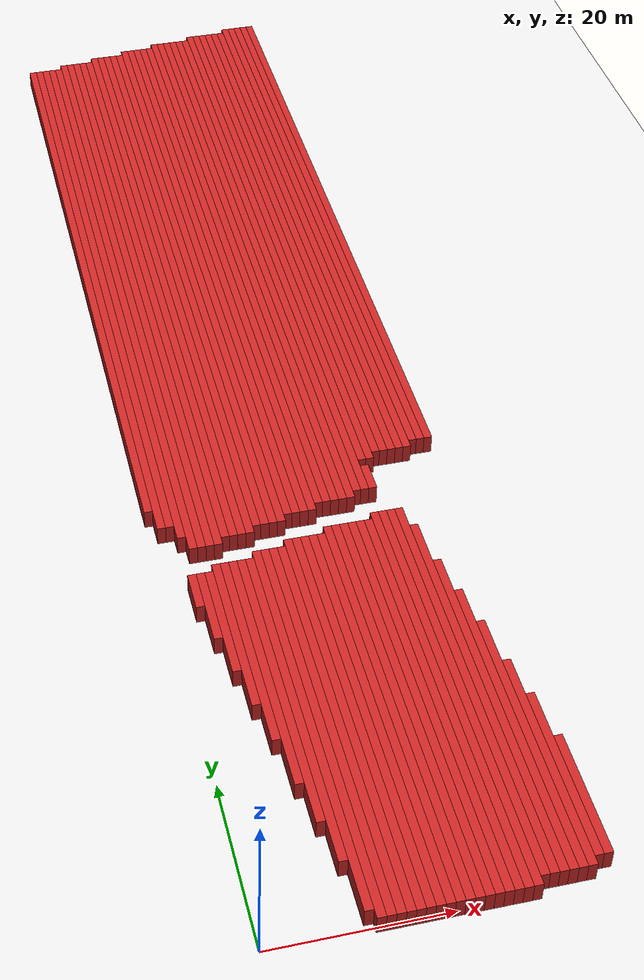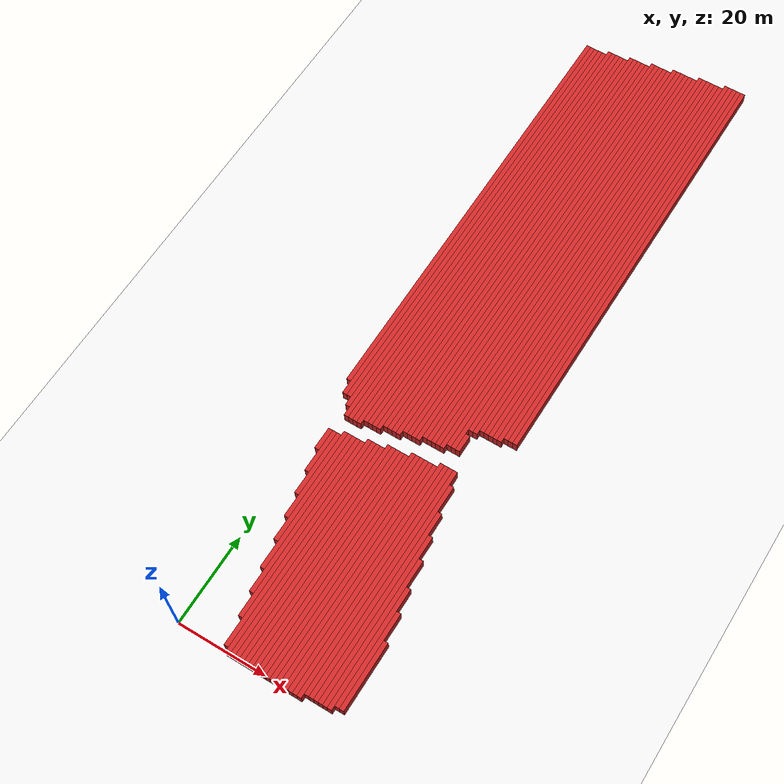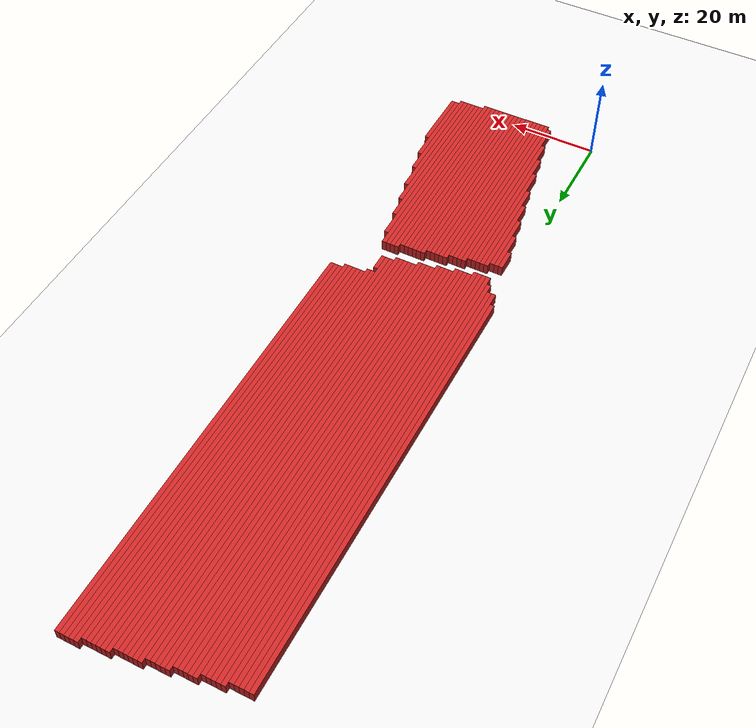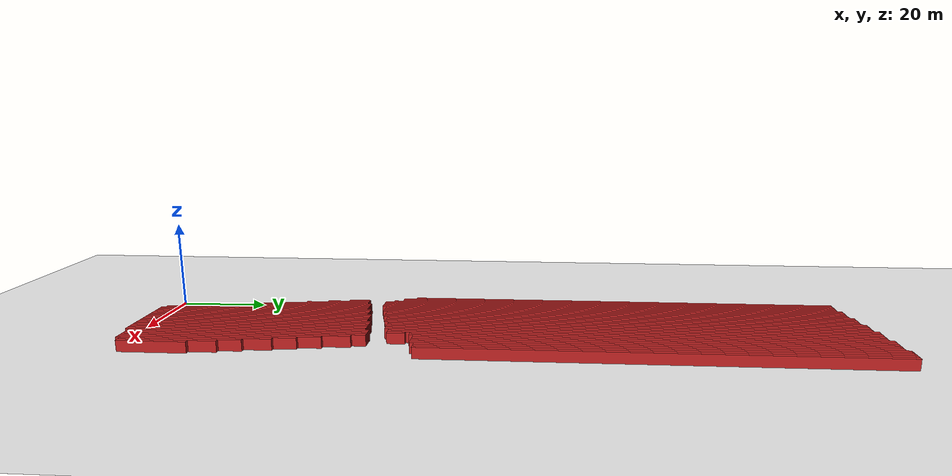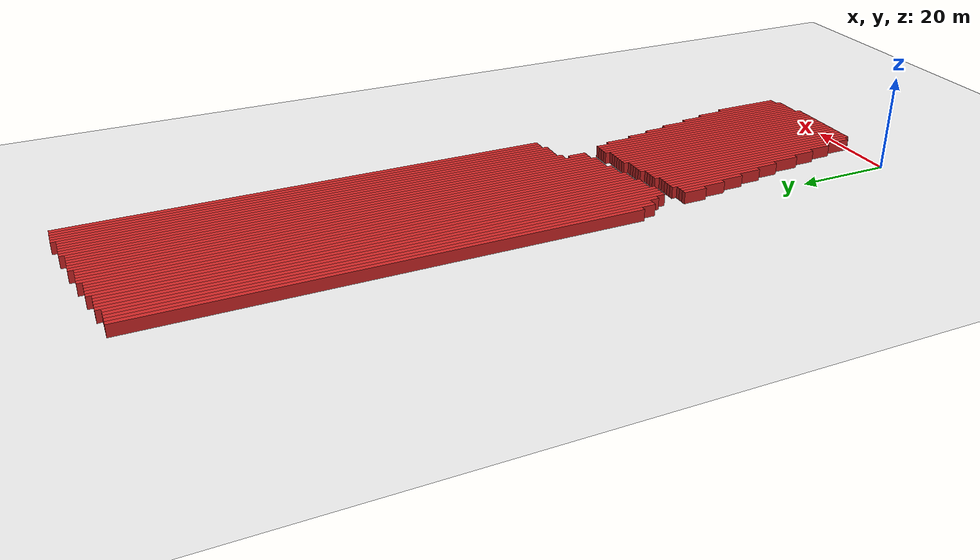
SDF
<sdf version="1.4">
 <world name="1_wall">
  <model name="ground_plane">
   <static>1</static>
   <link name="link">
    <collision name="collision">
     <geometry><plane><normal>0 0 1</normal><size>1000 1000</size></plane></geometry>
     <surface><friction><ode><mu>100</mu><mu2>50</mu2></ode></friction></surface>
    </collision>
    <visual name="visual">
     <cast_shadows>0</cast_shadows>
     <geometry><plane><normal>0 0 1</normal><size>10000 10000</size></plane></geometry>
     <material>
      <script><uri>file://media/materials/scripts/gazebo.material</uri><name>Gazebo/White</name></script>
     </material>
    </visual>
    <velocity_decay><linear>0</linear><angular>0</angular></velocity_decay>
   </link>
  </model>
  <model name="Wall_0">
   <static>1</static>
   <link name="Wall_0">
    <collision name="Wall_Collision_0">
     <geometry><box><size>99.0 1.0 2.5</size></box></geometry>
     <pose>0 0 1.25 0 -0 0</pose>
    </collision>
    <visual name="Wall_Visual_0">
     <pose>0 0 1.25 0 -0 0</pose>
     <geometry><box><size>99.0 1.0 2.5</size></box></geometry>
     <material>
      <script><uri>file://media/materials/scripts/gazebo.material</uri><name>Gazebo/Red</name></script>
     </material>
    </visual>
    <velocity_decay><linear>0</linear><angular>0</angular></velocity_decay>
    <pose>0.0 108.0 0 0 0 1.5707963267948966</pose>
   </link>
  </model>
  <model name="Wall_1">
   <static>1</static>
   <link name="Wall_1">
    <collision name="Wall_Collision_1">
     <geometry><box><size>102.0 1.0 2.5</size></box></geometry>
     <pose>0 0 1.25 0 -0 0</pose>
    </collision>
    <visual name="Wall_Visual_1">
     <pose>0 0 1.25 0 -0 0</pose>
     <geometry><box><size>102.0 1.0 2.5</size></box></geometry>
     <material>
      <script><uri>file://media/materials/scripts/gazebo.material</uri><name>Gazebo/Red</name></script>
     </material>
    </visual>
    <velocity_decay><linear>0</linear><angular>0</angular></velocity_decay>
    <pose>1.0 106.5 0 0 0 1.5707963267948966</pose>
   </link>
  </model>
  <model name="Wall_2">
   <static>1</static>
   <link name="Wall_2">
    <collision name="Wall_Collision_2">
     <geometry><box><size>102.0 1.0 2.5</size></box></geometry>
     <pose>0 0 1.25 0 -0 0</pose>
    </collision>
    <visual name="Wall_Visual_2">
     <pose>0 0 1.25 0 -0 0</pose>
     <geometry><box><size>102.0 1.0 2.5</size></box></geometry>
     <material>
      <script><uri>file://media/materials/scripts/gazebo.material</uri><name>Gazebo/Red</name></script>
     </material>
    </visual>
    <velocity_decay><linear>0</linear><angular>0</angular></velocity_decay>
    <pose>2.0 106.5 0 0 0 1.5707963267948966</pose>
   </link>
  </model>
  <model name="Wall_3">
   <static>1</static>
   <link name="Wall_3">
    <collision name="Wall_Collision_3">
     <geometry><box><size>5.0 1.0 2.5</size></box></geometry>
     <pose>0 0 1.25 0 -0 0</pose>
    </collision>
    <visual name="Wall_Visual_3">
     <pose>0 0 1.25 0 -0 0</pose>
     <geometry><box><size>5.0 1.0 2.5</size></box></geometry>
     <material>
      <script><uri>file://media/materials/scripts/gazebo.material</uri><name>Gazebo/Red</name></script>
     </material>
    </visual>
    <velocity_decay><linear>0</linear><angular>0</angular></velocity_decay>
    <pose>3.0 45.0 0 0 0 1.5707963267948966</pose>
   </link>
  </model>
  <model name="Wall_4">
   <static>1</static>
   <link name="Wall_4">
    <collision name="Wall_Collision_4">
     <geometry><box><size>104.0 1.0 2.5</size></box></geometry>
     <pose>0 0 1.25 0 -0 0</pose>
    </collision>
    <visual name="Wall_Visual_4">
     <pose>0 0 1.25 0 -0 0</pose>
     <geometry><box><size>104.0 1.0 2.5</size></box></geometry>
     <material>
      <script><uri>file://media/materials/scripts/gazebo.material</uri><name>Gazebo/Red</name></script>
     </material>
    </visual>
    <velocity_decay><linear>0</linear><angular>0</angular></velocity_decay>
    <pose>3.0 105.5 0 0 0 1.5707963267948966</pose>
   </link>
  </model>
  <model name="Wall_5">
   <static>1</static>
   <link name="Wall_5">
    <collision name="Wall_Collision_5">
     <geometry><box><size>10.0 1.0 2.5</size></box></geometry>
     <pose>0 0 1.25 0 -0 0</pose>
    </collision>
    <visual name="Wall_Visual_5">
     <pose>0 0 1.25 0 -0 0</pose>
     <geometry><box><size>10.0 1.0 2.5</size></box></geometry>
     <material>
      <script><uri>file://media/materials/scripts/gazebo.material</uri><name>Gazebo/Red</name></script>
     </material>
    </visual>
    <velocity_decay><linear>0</linear><angular>0</angular></velocity_decay>
    <pose>4.0 42.5 0 0 0 1.5707963267948966</pose>
   </link>
  </model>
  <model name="Wall_6">
   <static>1</static>
   <link name="Wall_6">
    <collision name="Wall_Collision_6">
     <geometry><box><size>106.0 1.0 2.5</size></box></geometry>
     <pose>0 0 1.25 0 -0 0</pose>
    </collision>
    <visual name="Wall_Visual_6">
     <pose>0 0 1.25 0 -0 0</pose>
     <geometry><box><size>106.0 1.0 2.5</size></box></geometry>
     <material>
      <script><uri>file://media/materials/scripts/gazebo.material</uri><name>Gazebo/Red</name></script>
     </material>
    </visual>
    <velocity_decay><linear>0</linear><angular>0</angular></velocity_decay>
    <pose>4.0 104.5 0 0 0 1.5707963267948966</pose>
   </link>
  </model>
  <model name="Wall_7">
   <static>1</static>
   <link name="Wall_7">
    <collision name="Wall_Collision_7">
     <geometry><box><size>15.0 1.0 2.5</size></box></geometry>
     <pose>0 0 1.25 0 -0 0</pose>
    </collision>
    <visual name="Wall_Visual_7">
     <pose>0 0 1.25 0 -0 0</pose>
     <geometry><box><size>15.0 1.0 2.5</size></box></geometry>
     <material>
      <script><uri>file://media/materials/scripts/gazebo.material</uri><name>Gazebo/Red</name></script>
     </material>
    </visual>
    <velocity_decay><linear>0</linear><angular>0</angular></velocity_decay>
    <pose>5.0 40.0 0 0 0 1.5707963267948966</pose>
   </link>
  </model>
  <model name="Wall_8">
   <static>1</static>
   <link name="Wall_8">
    <collision name="Wall_Collision_8">
     <geometry><box><size>107.0 1.0 2.5</size></box></geometry>
     <pose>0 0 1.25 0 -0 0</pose>
    </collision>
    <visual name="Wall_Visual_8">
     <pose>0 0 1.25 0 -0 0</pose>
     <geometry><box><size>107.0 1.0 2.5</size></box></geometry>
     <material>
      <script><uri>file://media/materials/scripts/gazebo.material</uri><name>Gazebo/Red</name></script>
     </material>
    </visual>
    <velocity_decay><linear>0</linear><angular>0</angular></velocity_decay>
    <pose>5.0 105.0 0 0 0 1.5707963267948966</pose>
   </link>
  </model>
  <model name="Wall_9">
   <static>1</static>
   <link name="Wall_9">
    <collision name="Wall_Collision_9">
     <geometry><box><size>21.0 1.0 2.5</size></box></geometry>
     <pose>0 0 1.25 0 -0 0</pose>
    </collision>
    <visual name="Wall_Visual_9">
     <pose>0 0 1.25 0 -0 0</pose>
     <geometry><box><size>21.0 1.0 2.5</size></box></geometry>
     <material>
      <script><uri>file://media/materials/scripts/gazebo.material</uri><name>Gazebo/Red</name></script>
     </material>
    </visual>
    <velocity_decay><linear>0</linear><angular>0</angular></velocity_decay>
    <pose>6.0 38.0 0 0 0 1.5707963267948966</pose>
   </link>
  </model>
  <model name="Wall_10">
   <static>1</static>
   <link name="Wall_10">
    <collision name="Wall_Collision_10">
     <geometry><box><size>107.0 1.0 2.5</size></box></geometry>
     <pose>0 0 1.25 0 -0 0</pose>
    </collision>
    <visual name="Wall_Visual_10">
     <pose>0 0 1.25 0 -0 0</pose>
     <geometry><box><size>107.0 1.0 2.5</size></box></geometry>
     <material>
      <script><uri>file://media/materials/scripts/gazebo.material</uri><name>Gazebo/Red</name></script>
     </material>
    </visual>
    <velocity_decay><linear>0</linear><angular>0</angular></velocity_decay>
    <pose>6.0 105.0 0 0 0 1.5707963267948966</pose>
   </link>
  </model>
  <model name="Wall_11">
   <static>1</static>
   <link name="Wall_11">
    <collision name="Wall_Collision_11">
     <geometry><box><size>26.0 1.0 2.5</size></box></geometry>
     <pose>0 0 1.25 0 -0 0</pose>
    </collision>
    <visual name="Wall_Visual_11">
     <pose>0 0 1.25 0 -0 0</pose>
     <geometry><box><size>26.0 1.0 2.5</size></box></geometry>
     <material>
      <script><uri>file://media/materials/scripts/gazebo.material</uri><name>Gazebo/Red</name></script>
     </material>
    </visual>
    <velocity_decay><linear>0</linear><angular>0</angular></velocity_decay>
    <pose>7.0 35.5 0 0 0 1.5707963267948966</pose>
   </link>
  </model>
  <model name="Wall_12">
   <static>1</static>
   <link name="Wall_12">
    <collision name="Wall_Collision_12">
     <geometry><box><size>107.0 1.0 2.5</size></box></geometry>
     <pose>0 0 1.25 0 -0 0</pose>
    </collision>
    <visual name="Wall_Visual_12">
     <pose>0 0 1.25 0 -0 0</pose>
     <geometry><box><size>107.0 1.0 2.5</size></box></geometry>
     <material>
      <script><uri>file://media/materials/scripts/gazebo.material</uri><name>Gazebo/Red</name></script>
     </material>
    </visual>
    <velocity_decay><linear>0</linear><angular>0</angular></velocity_decay>
    <pose>7.0 105.0 0 0 0 1.5707963267948966</pose>
   </link>
  </model>
  <model name="Wall_13">
   <static>1</static>
   <link name="Wall_13">
    <collision name="Wall_Collision_13">
     <geometry><box><size>32.0 1.0 2.5</size></box></geometry>
     <pose>0 0 1.25 0 -0 0</pose>
    </collision>
    <visual name="Wall_Visual_13">
     <pose>0 0 1.25 0 -0 0</pose>
     <geometry><box><size>32.0 1.0 2.5</size></box></geometry>
     <material>
      <script><uri>file://media/materials/scripts/gazebo.material</uri><name>Gazebo/Red</name></script>
     </material>
    </visual>
    <velocity_decay><linear>0</linear><angular>0</angular></velocity_decay>
    <pose>8.0 32.5 0 0 0 1.5707963267948966</pose>
   </link>
  </model>
  <model name="Wall_14">
   <static>1</static>
   <link name="Wall_14">
    <collision name="Wall_Collision_14">
     <geometry><box><size>106.0 1.0 2.5</size></box></geometry>
     <pose>0 0 1.25 0 -0 0</pose>
    </collision>
    <visual name="Wall_Visual_14">
     <pose>0 0 1.25 0 -0 0</pose>
     <geometry><box><size>106.0 1.0 2.5</size></box></geometry>
     <material>
      <script><uri>file://media/materials/scripts/gazebo.material</uri><name>Gazebo/Red</name></script>
     </material>
    </visual>
    <velocity_decay><linear>0</linear><angular>0</angular></velocity_decay>
    <pose>8.0 105.5 0 0 0 1.5707963267948966</pose>
   </link>
  </model>
  <model name="Wall_15">
   <static>1</static>
   <link name="Wall_15">
    <collision name="Wall_Collision_15">
     <geometry><box><size>37.0 1.0 2.5</size></box></geometry>
     <pose>0 0 1.25 0 -0 0</pose>
    </collision>
    <visual name="Wall_Visual_15">
     <pose>0 0 1.25 0 -0 0</pose>
     <geometry><box><size>37.0 1.0 2.5</size></box></geometry>
     <material>
      <script><uri>file://media/materials/scripts/gazebo.material</uri><name>Gazebo/Red</name></script>
     </material>
    </visual>
    <velocity_decay><linear>0</linear><angular>0</angular></velocity_decay>
    <pose>9.0 30.0 0 0 0 1.5707963267948966</pose>
   </link>
  </model>
  <model name="Wall_16">
   <static>1</static>
   <link name="Wall_16">
    <collision name="Wall_Collision_16">
     <geometry><box><size>106.0 1.0 2.5</size></box></geometry>
     <pose>0 0 1.25 0 -0 0</pose>
    </collision>
    <visual name="Wall_Visual_16">
     <pose>0 0 1.25 0 -0 0</pose>
     <geometry><box><size>106.0 1.0 2.5</size></box></geometry>
     <material>
      <script><uri>file://media/materials/scripts/gazebo.material</uri><name>Gazebo/Red</name></script>
     </material>
    </visual>
    <velocity_decay><linear>0</linear><angular>0</angular></velocity_decay>
    <pose>9.0 105.5 0 0 0 1.5707963267948966</pose>
   </link>
  </model>
  <model name="Wall_17">
   <static>1</static>
   <link name="Wall_17">
    <collision name="Wall_Collision_17">
     <geometry><box><size>42.0 1.0 2.5</size></box></geometry>
     <pose>0 0 1.25 0 -0 0</pose>
    </collision>
    <visual name="Wall_Visual_17">
     <pose>0 0 1.25 0 -0 0</pose>
     <geometry><box><size>42.0 1.0 2.5</size></box></geometry>
     <material>
      <script><uri>file://media/materials/scripts/gazebo.material</uri><name>Gazebo/Red</name></script>
     </material>
    </visual>
    <velocity_decay><linear>0</linear><angular>0</angular></velocity_decay>
    <pose>10.0 27.5 0 0 0 1.5707963267948966</pose>
   </link>
  </model>
  <model name="Wall_18">
   <static>1</static>
   <link name="Wall_18">
    <collision name="Wall_Collision_18">
     <geometry><box><size>107.0 1.0 2.5</size></box></geometry>
     <pose>0 0 1.25 0 -0 0</pose>
    </collision>
    <visual name="Wall_Visual_18">
     <pose>0 0 1.25 0 -0 0</pose>
     <geometry><box><size>107.0 1.0 2.5</size></box></geometry>
     <material>
      <script><uri>file://media/materials/scripts/gazebo.material</uri><name>Gazebo/Red</name></script>
     </material>
    </visual>
    <velocity_decay><linear>0</linear><angular>0</angular></velocity_decay>
    <pose>10.0 106.0 0 0 0 1.5707963267948966</pose>
   </link>
  </model>
  <model name="Wall_19">
   <static>1</static>
   <link name="Wall_19">
    <collision name="Wall_Collision_19">
     <geometry><box><size>49.0 1.0 2.5</size></box></geometry>
     <pose>0 0 1.25 0 -0 0</pose>
    </collision>
    <visual name="Wall_Visual_19">
     <pose>0 0 1.25 0 -0 0</pose>
     <geometry><box><size>49.0 1.0 2.5</size></box></geometry>
     <material>
      <script><uri>file://media/materials/scripts/gazebo.material</uri><name>Gazebo/Red</name></script>
     </material>
    </visual>
    <velocity_decay><linear>0</linear><angular>0</angular></velocity_decay>
    <pose>11.0 25.0 0 0 0 1.5707963267948966</pose>
   </link>
  </model>
  <model name="Wall_20">
   <static>1</static>
   <link name="Wall_20">
    <collision name="Wall_Collision_20">
     <geometry><box><size>107.0 1.0 2.5</size></box></geometry>
     <pose>0 0 1.25 0 -0 0</pose>
    </collision>
    <visual name="Wall_Visual_20">
     <pose>0 0 1.25 0 -0 0</pose>
     <geometry><box><size>107.0 1.0 2.5</size></box></geometry>
     <material>
      <script><uri>file://media/materials/scripts/gazebo.material</uri><name>Gazebo/Red</name></script>
     </material>
    </visual>
    <velocity_decay><linear>0</linear><angular>0</angular></velocity_decay>
    <pose>11.0 106.0 0 0 0 1.5707963267948966</pose>
   </link>
  </model>
  <model name="Wall_21">
   <static>1</static>
   <link name="Wall_21">
    <collision name="Wall_Collision_21">
     <geometry><box><size>50.0 1.0 2.5</size></box></geometry>
     <pose>0 0 1.25 0 -0 0</pose>
    </collision>
    <visual name="Wall_Visual_21">
     <pose>0 0 1.25 0 -0 0</pose>
     <geometry><box><size>50.0 1.0 2.5</size></box></geometry>
     <material>
      <script><uri>file://media/materials/scripts/gazebo.material</uri><name>Gazebo/Red</name></script>
     </material>
    </visual>
    <velocity_decay><linear>0</linear><angular>0</angular></velocity_decay>
    <pose>12.0 24.5 0 0 0 1.5707963267948966</pose>
   </link>
  </model>
  <model name="Wall_22">
   <static>1</static>
   <link name="Wall_22">
    <collision name="Wall_Collision_22">
     <geometry><box><size>106.0 1.0 2.5</size></box></geometry>
     <pose>0 0 1.25 0 -0 0</pose>
    </collision>
    <visual name="Wall_Visual_22">
     <pose>0 0 1.25 0 -0 0</pose>
     <geometry><box><size>106.0 1.0 2.5</size></box></geometry>
     <material>
      <script><uri>file://media/materials/scripts/gazebo.material</uri><name>Gazebo/Red</name></script>
     </material>
    </visual>
    <velocity_decay><linear>0</linear><angular>0</angular></velocity_decay>
    <pose>12.0 106.5 0 0 0 1.5707963267948966</pose>
   </link>
  </model>
  <model name="Wall_23">
   <static>1</static>
   <link name="Wall_23">
    <collision name="Wall_Collision_23">
     <geometry><box><size>50.0 1.0 2.5</size></box></geometry>
     <pose>0 0 1.25 0 -0 0</pose>
    </collision>
    <visual name="Wall_Visual_23">
     <pose>0 0 1.25 0 -0 0</pose>
     <geometry><box><size>50.0 1.0 2.5</size></box></geometry>
     <material>
      <script><uri>file://media/materials/scripts/gazebo.material</uri><name>Gazebo/Red</name></script>
     </material>
    </visual>
    <velocity_decay><linear>0</linear><angular>0</angular></velocity_decay>
    <pose>13.0 24.5 0 0 0 1.5707963267948966</pose>
   </link>
  </model>
  <model name="Wall_24">
   <static>1</static>
   <link name="Wall_24">
    <collision name="Wall_Collision_24">
     <geometry><box><size>106.0 1.0 2.5</size></box></geometry>
     <pose>0 0 1.25 0 -0 0</pose>
    </collision>
    <visual name="Wall_Visual_24">
     <pose>0 0 1.25 0 -0 0</pose>
     <geometry><box><size>106.0 1.0 2.5</size></box></geometry>
     <material>
      <script><uri>file://media/materials/scripts/gazebo.material</uri><name>Gazebo/Red</name></script>
     </material>
    </visual>
    <velocity_decay><linear>0</linear><angular>0</angular></velocity_decay>
    <pose>13.0 106.5 0 0 0 1.5707963267948966</pose>
   </link>
  </model>
  <model name="Wall_25">
   <static>1</static>
   <link name="Wall_25">
    <collision name="Wall_Collision_25">
     <geometry><box><size>50.0 1.0 2.5</size></box></geometry>
     <pose>0 0 1.25 0 -0 0</pose>
    </collision>
    <visual name="Wall_Visual_25">
     <pose>0 0 1.25 0 -0 0</pose>
     <geometry><box><size>50.0 1.0 2.5</size></box></geometry>
     <material>
      <script><uri>file://media/materials/scripts/gazebo.material</uri><name>Gazebo/Red</name></script>
     </material>
    </visual>
    <velocity_decay><linear>0</linear><angular>0</angular></velocity_decay>
    <pose>14.0 24.5 0 0 0 1.5707963267948966</pose>
   </link>
  </model>
  <model name="Wall_26">
   <static>1</static>
   <link name="Wall_26">
    <collision name="Wall_Collision_26">
     <geometry><box><size>106.0 1.0 2.5</size></box></geometry>
     <pose>0 0 1.25 0 -0 0</pose>
    </collision>
    <visual name="Wall_Visual_26">
     <pose>0 0 1.25 0 -0 0</pose>
     <geometry><box><size>106.0 1.0 2.5</size></box></geometry>
     <material>
      <script><uri>file://media/materials/scripts/gazebo.material</uri><name>Gazebo/Red</name></script>
     </material>
    </visual>
    <velocity_decay><linear>0</linear><angular>0</angular></velocity_decay>
    <pose>14.0 106.5 0 0 0 1.5707963267948966</pose>
   </link>
  </model>
  <model name="Wall_27">
   <static>1</static>
   <link name="Wall_27">
    <collision name="Wall_Collision_27">
     <geometry><box><size>51.0 1.0 2.5</size></box></geometry>
     <pose>0 0 1.25 0 -0 0</pose>
    </collision>
    <visual name="Wall_Visual_27">
     <pose>0 0 1.25 0 -0 0</pose>
     <geometry><box><size>51.0 1.0 2.5</size></box></geometry>
     <material>
      <script><uri>file://media/materials/scripts/gazebo.material</uri><name>Gazebo/Red</name></script>
     </material>
    </visual>
    <velocity_decay><linear>0</linear><angular>0</angular></velocity_decay>
    <pose>15.0 25.0 0 0 0 1.5707963267948966</pose>
   </link>
  </model>
  <model name="Wall_28">
   <static>1</static>
   <link name="Wall_28">
    <collision name="Wall_Collision_28">
     <geometry><box><size>107.0 1.0 2.5</size></box></geometry>
     <pose>0 0 1.25 0 -0 0</pose>
    </collision>
    <visual name="Wall_Visual_28">
     <pose>0 0 1.25 0 -0 0</pose>
     <geometry><box><size>107.0 1.0 2.5</size></box></geometry>
     <material>
      <script><uri>file://media/materials/scripts/gazebo.material</uri><name>Gazebo/Red</name></script>
     </material>
    </visual>
    <velocity_decay><linear>0</linear><angular>0</angular></velocity_decay>
    <pose>15.0 107.0 0 0 0 1.5707963267948966</pose>
   </link>
  </model>
  <model name="Wall_29">
   <static>1</static>
   <link name="Wall_29">
    <collision name="Wall_Collision_29">
     <geometry><box><size>51.0 1.0 2.5</size></box></geometry>
     <pose>0 0 1.25 0 -0 0</pose>
    </collision>
    <visual name="Wall_Visual_29">
     <pose>0 0 1.25 0 -0 0</pose>
     <geometry><box><size>51.0 1.0 2.5</size></box></geometry>
     <material>
      <script><uri>file://media/materials/scripts/gazebo.material</uri><name>Gazebo/Red</name></script>
     </material>
    </visual>
    <velocity_decay><linear>0</linear><angular>0</angular></velocity_decay>
    <pose>16.0 25.0 0 0 0 1.5707963267948966</pose>
   </link>
  </model>
  <model name="Wall_30">
   <static>1</static>
   <link name="Wall_30">
    <collision name="Wall_Collision_30">
     <geometry><box><size>106.0 1.0 2.5</size></box></geometry>
     <pose>0 0 1.25 0 -0 0</pose>
    </collision>
    <visual name="Wall_Visual_30">
     <pose>0 0 1.25 0 -0 0</pose>
     <geometry><box><size>106.0 1.0 2.5</size></box></geometry>
     <material>
      <script><uri>file://media/materials/scripts/gazebo.material</uri><name>Gazebo/Red</name></script>
     </material>
    </visual>
    <velocity_decay><linear>0</linear><angular>0</angular></velocity_decay>
    <pose>16.0 107.5 0 0 0 1.5707963267948966</pose>
   </link>
  </model>
  <model name="Wall_31">
   <static>1</static>
   <link name="Wall_31">
    <collision name="Wall_Collision_31">
     <geometry><box><size>51.0 1.0 2.5</size></box></geometry>
     <pose>0 0 1.25 0 -0 0</pose>
    </collision>
    <visual name="Wall_Visual_31">
     <pose>0 0 1.25 0 -0 0</pose>
     <geometry><box><size>51.0 1.0 2.5</size></box></geometry>
     <material>
      <script><uri>file://media/materials/scripts/gazebo.material</uri><name>Gazebo/Red</name></script>
     </material>
    </visual>
    <velocity_decay><linear>0</linear><angular>0</angular></velocity_decay>
    <pose>17.0 25.0 0 0 0 1.5707963267948966</pose>
   </link>
  </model>
  <model name="Wall_32">
   <static>1</static>
   <link name="Wall_32">
    <collision name="Wall_Collision_32">
     <geometry><box><size>106.0 1.0 2.5</size></box></geometry>
     <pose>0 0 1.25 0 -0 0</pose>
    </collision>
    <visual name="Wall_Visual_32">
     <pose>0 0 1.25 0 -0 0</pose>
     <geometry><box><size>106.0 1.0 2.5</size></box></geometry>
     <material>
      <script><uri>file://media/materials/scripts/gazebo.material</uri><name>Gazebo/Red</name></script>
     </material>
    </visual>
    <velocity_decay><linear>0</linear><angular>0</angular></velocity_decay>
    <pose>17.0 107.5 0 0 0 1.5707963267948966</pose>
   </link>
  </model>
  <model name="Wall_33">
   <static>1</static>
   <link name="Wall_33">
    <collision name="Wall_Collision_33">
     <geometry><box><size>51.0 1.0 2.5</size></box></geometry>
     <pose>0 0 1.25 0 -0 0</pose>
    </collision>
    <visual name="Wall_Visual_33">
     <pose>0 0 1.25 0 -0 0</pose>
     <geometry><box><size>51.0 1.0 2.5</size></box></geometry>
     <material>
      <script><uri>file://media/materials/scripts/gazebo.material</uri><name>Gazebo/Red</name></script>
     </material>
    </visual>
    <velocity_decay><linear>0</linear><angular>0</angular></velocity_decay>
    <pose>18.0 25.0 0 0 0 1.5707963267948966</pose>
   </link>
  </model>
  <model name="Wall_34">
   <static>1</static>
   <link name="Wall_34">
    <collision name="Wall_Collision_34">
     <geometry><box><size>106.0 1.0 2.5</size></box></geometry>
     <pose>0 0 1.25 0 -0 0</pose>
    </collision>
    <visual name="Wall_Visual_34">
     <pose>0 0 1.25 0 -0 0</pose>
     <geometry><box><size>106.0 1.0 2.5</size></box></geometry>
     <material>
      <script><uri>file://media/materials/scripts/gazebo.material</uri><name>Gazebo/Red</name></script>
     </material>
    </visual>
    <velocity_decay><linear>0</linear><angular>0</angular></velocity_decay>
    <pose>18.0 107.5 0 0 0 1.5707963267948966</pose>
   </link>
  </model>
  <model name="Wall_35">
   <static>1</static>
   <link name="Wall_35">
    <collision name="Wall_Collision_35">
     <geometry><box><size>51.0 1.0 2.5</size></box></geometry>
     <pose>0 0 1.25 0 -0 0</pose>
    </collision>
    <visual name="Wall_Visual_35">
     <pose>0 0 1.25 0 -0 0</pose>
     <geometry><box><size>51.0 1.0 2.5</size></box></geometry>
     <material>
      <script><uri>file://media/materials/scripts/gazebo.material</uri><name>Gazebo/Red</name></script>
     </material>
    </visual>
    <velocity_decay><linear>0</linear><angular>0</angular></velocity_decay>
    <pose>19.0 25.0 0 0 0 1.5707963267948966</pose>
   </link>
  </model>
  <model name="Wall_36">
   <static>1</static>
   <link name="Wall_36">
    <collision name="Wall_Collision_36">
     <geometry><box><size>106.0 1.0 2.5</size></box></geometry>
     <pose>0 0 1.25 0 -0 0</pose>
    </collision>
    <visual name="Wall_Visual_36">
     <pose>0 0 1.25 0 -0 0</pose>
     <geometry><box><size>106.0 1.0 2.5</size></box></geometry>
     <material>
      <script><uri>file://media/materials/scripts/gazebo.material</uri><name>Gazebo/Red</name></script>
     </material>
    </visual>
    <velocity_decay><linear>0</linear><angular>0</angular></velocity_decay>
    <pose>19.0 107.5 0 0 0 1.5707963267948966</pose>
   </link>
  </model>
  <model name="Wall_37">
   <static>1</static>
   <link name="Wall_37">
    <collision name="Wall_Collision_37">
     <geometry><box><size>52.0 1.0 2.5</size></box></geometry>
     <pose>0 0 1.25 0 -0 0</pose>
    </collision>
    <visual name="Wall_Visual_37">
     <pose>0 0 1.25 0 -0 0</pose>
     <geometry><box><size>52.0 1.0 2.5</size></box></geometry>
     <material>
      <script><uri>file://media/materials/scripts/gazebo.material</uri><name>Gazebo/Red</name></script>
     </material>
    </visual>
    <velocity_decay><linear>0</linear><angular>0</angular></velocity_decay>
    <pose>20.0 25.5 0 0 0 1.5707963267948966</pose>
   </link>
  </model>
  <model name="Wall_38">
   <static>1</static>
   <link name="Wall_38">
    <collision name="Wall_Collision_38">
     <geometry><box><size>106.0 1.0 2.5</size></box></geometry>
     <pose>0 0 1.25 0 -0 0</pose>
    </collision>
    <visual name="Wall_Visual_38">
     <pose>0 0 1.25 0 -0 0</pose>
     <geometry><box><size>106.0 1.0 2.5</size></box></geometry>
     <material>
      <script><uri>file://media/materials/scripts/gazebo.material</uri><name>Gazebo/Red</name></script>
     </material>
    </visual>
    <velocity_decay><linear>0</linear><angular>0</angular></velocity_decay>
    <pose>20.0 108.5 0 0 0 1.5707963267948966</pose>
   </link>
  </model>
  <model name="Wall_39">
   <static>1</static>
   <link name="Wall_39">
    <collision name="Wall_Collision_39">
     <geometry><box><size>52.0 1.0 2.5</size></box></geometry>
     <pose>0 0 1.25 0 -0 0</pose>
    </collision>
    <visual name="Wall_Visual_39">
     <pose>0 0 1.25 0 -0 0</pose>
     <geometry><box><size>52.0 1.0 2.5</size></box></geometry>
     <material>
      <script><uri>file://media/materials/scripts/gazebo.material</uri><name>Gazebo/Red</name></script>
     </material>
    </visual>
    <velocity_decay><linear>0</linear><angular>0</angular></velocity_decay>
    <pose>21.0 25.5 0 0 0 1.5707963267948966</pose>
   </link>
  </model>
  <model name="Wall_40">
   <static>1</static>
   <link name="Wall_40">
    <collision name="Wall_Collision_40">
     <geometry><box><size>106.0 1.0 2.5</size></box></geometry>
     <pose>0 0 1.25 0 -0 0</pose>
    </collision>
    <visual name="Wall_Visual_40">
     <pose>0 0 1.25 0 -0 0</pose>
     <geometry><box><size>106.0 1.0 2.5</size></box></geometry>
     <material>
      <script><uri>file://media/materials/scripts/gazebo.material</uri><name>Gazebo/Red</name></script>
     </material>
    </visual>
    <velocity_decay><linear>0</linear><angular>0</angular></velocity_decay>
    <pose>21.0 108.5 0 0 0 1.5707963267948966</pose>
   </link>
  </model>
  <model name="Wall_41">
   <static>1</static>
   <link name="Wall_41">
    <collision name="Wall_Collision_41">
     <geometry><box><size>52.0 1.0 2.5</size></box></geometry>
     <pose>0 0 1.25 0 -0 0</pose>
    </collision>
    <visual name="Wall_Visual_41">
     <pose>0 0 1.25 0 -0 0</pose>
     <geometry><box><size>52.0 1.0 2.5</size></box></geometry>
     <material>
      <script><uri>file://media/materials/scripts/gazebo.material</uri><name>Gazebo/Red</name></script>
     </material>
    </visual>
    <velocity_decay><linear>0</linear><angular>0</angular></velocity_decay>
    <pose>22.0 25.5 0 0 0 1.5707963267948966</pose>
   </link>
  </model>
  <model name="Wall_42">
   <static>1</static>
   <link name="Wall_42">
    <collision name="Wall_Collision_42">
     <geometry><box><size>106.0 1.0 2.5</size></box></geometry>
     <pose>0 0 1.25 0 -0 0</pose>
    </collision>
    <visual name="Wall_Visual_42">
     <pose>0 0 1.25 0 -0 0</pose>
     <geometry><box><size>106.0 1.0 2.5</size></box></geometry>
     <material>
      <script><uri>file://media/materials/scripts/gazebo.material</uri><name>Gazebo/Red</name></script>
     </material>
    </visual>
    <velocity_decay><linear>0</linear><angular>0</angular></velocity_decay>
    <pose>22.0 108.5 0 0 0 1.5707963267948966</pose>
   </link>
  </model>
  <model name="Wall_43">
   <static>1</static>
   <link name="Wall_43">
    <collision name="Wall_Collision_43">
     <geometry><box><size>52.0 1.0 2.5</size></box></geometry>
     <pose>0 0 1.25 0 -0 0</pose>
    </collision>
    <visual name="Wall_Visual_43">
     <pose>0 0 1.25 0 -0 0</pose>
     <geometry><box><size>52.0 1.0 2.5</size></box></geometry>
     <material>
      <script><uri>file://media/materials/scripts/gazebo.material</uri><name>Gazebo/Red</name></script>
     </material>
    </visual>
    <velocity_decay><linear>0</linear><angular>0</angular></velocity_decay>
    <pose>23.0 25.5 0 0 0 1.5707963267948966</pose>
   </link>
  </model>
  <model name="Wall_44">
   <static>1</static>
   <link name="Wall_44">
    <collision name="Wall_Collision_44">
     <geometry><box><size>106.0 1.0 2.5</size></box></geometry>
     <pose>0 0 1.25 0 -0 0</pose>
    </collision>
    <visual name="Wall_Visual_44">
     <pose>0 0 1.25 0 -0 0</pose>
     <geometry><box><size>106.0 1.0 2.5</size></box></geometry>
     <material>
      <script><uri>file://media/materials/scripts/gazebo.material</uri><name>Gazebo/Red</name></script>
     </material>
    </visual>
    <velocity_decay><linear>0</linear><angular>0</angular></velocity_decay>
    <pose>23.0 108.5 0 0 0 1.5707963267948966</pose>
   </link>
  </model>
  <model name="Wall_45">
   <static>1</static>
   <link name="Wall_45">
    <collision name="Wall_Collision_45">
     <geometry><box><size>52.0 1.0 2.5</size></box></geometry>
     <pose>0 0 1.25 0 -0 0</pose>
    </collision>
    <visual name="Wall_Visual_45">
     <pose>0 0 1.25 0 -0 0</pose>
     <geometry><box><size>52.0 1.0 2.5</size></box></geometry>
     <material>
      <script><uri>file://media/materials/scripts/gazebo.material</uri><name>Gazebo/Red</name></script>
     </material>
    </visual>
    <velocity_decay><linear>0</linear><angular>0</angular></velocity_decay>
    <pose>24.0 25.5 0 0 0 1.5707963267948966</pose>
   </link>
  </model>
  <model name="Wall_46">
   <static>1</static>
   <link name="Wall_46">
    <collision name="Wall_Collision_46">
     <geometry><box><size>106.0 1.0 2.5</size></box></geometry>
     <pose>0 0 1.25 0 -0 0</pose>
    </collision>
    <visual name="Wall_Visual_46">
     <pose>0 0 1.25 0 -0 0</pose>
     <geometry><box><size>106.0 1.0 2.5</size></box></geometry>
     <material>
      <script><uri>file://media/materials/scripts/gazebo.material</uri><name>Gazebo/Red</name></script>
     </material>
    </visual>
    <velocity_decay><linear>0</linear><angular>0</angular></velocity_decay>
    <pose>24.0 108.5 0 0 0 1.5707963267948966</pose>
   </link>
  </model>
  <model name="Wall_47">
   <static>1</static>
   <link name="Wall_47">
    <collision name="Wall_Collision_47">
     <geometry><box><size>52.0 1.0 2.5</size></box></geometry>
     <pose>0 0 1.25 0 -0 0</pose>
    </collision>
    <visual name="Wall_Visual_47">
     <pose>0 0 1.25 0 -0 0</pose>
     <geometry><box><size>52.0 1.0 2.5</size></box></geometry>
     <material>
      <script><uri>file://media/materials/scripts/gazebo.material</uri><name>Gazebo/Red</name></script>
     </material>
    </visual>
    <velocity_decay><linear>0</linear><angular>0</angular></velocity_decay>
    <pose>25.0 25.5 0 0 0 1.5707963267948966</pose>
   </link>
  </model>
  <model name="Wall_48">
   <static>1</static>
   <link name="Wall_48">
    <collision name="Wall_Collision_48">
     <geometry><box><size>105.0 1.0 2.5</size></box></geometry>
     <pose>0 0 1.25 0 -0 0</pose>
    </collision>
    <visual name="Wall_Visual_48">
     <pose>0 0 1.25 0 -0 0</pose>
     <geometry><box><size>105.0 1.0 2.5</size></box></geometry>
     <material>
      <script><uri>file://media/materials/scripts/gazebo.material</uri><name>Gazebo/Red</name></script>
     </material>
    </visual>
    <velocity_decay><linear>0</linear><angular>0</angular></velocity_decay>
    <pose>25.0 109.0 0 0 0 1.5707963267948966</pose>
   </link>
  </model>
  <model name="Wall_49">
   <static>1</static>
   <link name="Wall_49">
    <collision name="Wall_Collision_49">
     <geometry><box><size>53.0 1.0 2.5</size></box></geometry>
     <pose>0 0 1.25 0 -0 0</pose>
    </collision>
    <visual name="Wall_Visual_49">
     <pose>0 0 1.25 0 -0 0</pose>
     <geometry><box><size>53.0 1.0 2.5</size></box></geometry>
     <material>
      <script><uri>file://media/materials/scripts/gazebo.material</uri><name>Gazebo/Red</name></script>
     </material>
    </visual>
    <velocity_decay><linear>0</linear><angular>0</angular></velocity_decay>
    <pose>26.0 26.0 0 0 0 1.5707963267948966</pose>
   </link>
  </model>
  <model name="Wall_50">
   <static>1</static>
   <link name="Wall_50">
    <collision name="Wall_Collision_50">
     <geometry><box><size>106.0 1.0 2.5</size></box></geometry>
     <pose>0 0 1.25 0 -0 0</pose>
    </collision>
    <visual name="Wall_Visual_50">
     <pose>0 0 1.25 0 -0 0</pose>
     <geometry><box><size>106.0 1.0 2.5</size></box></geometry>
     <material>
      <script><uri>file://media/materials/scripts/gazebo.material</uri><name>Gazebo/Red</name></script>
     </material>
    </visual>
    <velocity_decay><linear>0</linear><angular>0</angular></velocity_decay>
    <pose>26.0 109.5 0 0 0 1.5707963267948966</pose>
   </link>
  </model>
  <model name="Wall_51">
   <static>1</static>
   <link name="Wall_51">
    <collision name="Wall_Collision_51">
     <geometry><box><size>53.0 1.0 2.5</size></box></geometry>
     <pose>0 0 1.25 0 -0 0</pose>
    </collision>
    <visual name="Wall_Visual_51">
     <pose>0 0 1.25 0 -0 0</pose>
     <geometry><box><size>53.0 1.0 2.5</size></box></geometry>
     <material>
      <script><uri>file://media/materials/scripts/gazebo.material</uri><name>Gazebo/Red</name></script>
     </material>
    </visual>
    <velocity_decay><linear>0</linear><angular>0</angular></velocity_decay>
    <pose>27.0 26.0 0 0 0 1.5707963267948966</pose>
   </link>
  </model>
  <model name="Wall_52">
   <static>1</static>
   <link name="Wall_52">
    <collision name="Wall_Collision_52">
     <geometry><box><size>4.0 1.0 2.5</size></box></geometry>
     <pose>0 0 1.25 0 -0 0</pose>
    </collision>
    <visual name="Wall_Visual_52">
     <pose>0 0 1.25 0 -0 0</pose>
     <geometry><box><size>4.0 1.0 2.5</size></box></geometry>
     <material>
      <script><uri>file://media/materials/scripts/gazebo.material</uri><name>Gazebo/Red</name></script>
     </material>
    </visual>
    <velocity_decay><linear>0</linear><angular>0</angular></velocity_decay>
    <pose>27.0 58.5 0 0 0 1.5707963267948966</pose>
   </link>
  </model>
  <model name="Wall_53">
   <static>1</static>
   <link name="Wall_53">
    <collision name="Wall_Collision_53">
     <geometry><box><size>101.0 1.0 2.5</size></box></geometry>
     <pose>0 0 1.25 0 -0 0</pose>
    </collision>
    <visual name="Wall_Visual_53">
     <pose>0 0 1.25 0 -0 0</pose>
     <geometry><box><size>101.0 1.0 2.5</size></box></geometry>
     <material>
      <script><uri>file://media/materials/scripts/gazebo.material</uri><name>Gazebo/Red</name></script>
     </material>
    </visual>
    <velocity_decay><linear>0</linear><angular>0</angular></velocity_decay>
    <pose>27.0 112.0 0 0 0 1.5707963267948966</pose>
   </link>
  </model>
  <model name="Wall_54">
   <static>1</static>
   <link name="Wall_54">
    <collision name="Wall_Collision_54">
     <geometry><box><size>53.0 1.0 2.5</size></box></geometry>
     <pose>0 0 1.25 0 -0 0</pose>
    </collision>
    <visual name="Wall_Visual_54">
     <pose>0 0 1.25 0 -0 0</pose>
     <geometry><box><size>53.0 1.0 2.5</size></box></geometry>
     <material>
      <script><uri>file://media/materials/scripts/gazebo.material</uri><name>Gazebo/Red</name></script>
     </material>
    </visual>
    <velocity_decay><linear>0</linear><angular>0</angular></velocity_decay>
    <pose>28.0 26.0 0 0 0 1.5707963267948966</pose>
   </link>
  </model>
  <model name="Wall_55">
   <static>1</static>
   <link name="Wall_55">
    <collision name="Wall_Collision_55">
     <geometry><box><size>101.0 1.0 2.5</size></box></geometry>
     <pose>0 0 1.25 0 -0 0</pose>
    </collision>
    <visual name="Wall_Visual_55">
     <pose>0 0 1.25 0 -0 0</pose>
     <geometry><box><size>101.0 1.0 2.5</size></box></geometry>
     <material>
      <script><uri>file://media/materials/scripts/gazebo.material</uri><name>Gazebo/Red</name></script>
     </material>
    </visual>
    <velocity_decay><linear>0</linear><angular>0</angular></velocity_decay>
    <pose>28.0 112.0 0 0 0 1.5707963267948966</pose>
   </link>
  </model>
  <model name="Wall_56">
   <static>1</static>
   <link name="Wall_56">
    <collision name="Wall_Collision_56">
     <geometry><box><size>52.0 1.0 2.5</size></box></geometry>
     <pose>0 0 1.25 0 -0 0</pose>
    </collision>
    <visual name="Wall_Visual_56">
     <pose>0 0 1.25 0 -0 0</pose>
     <geometry><box><size>52.0 1.0 2.5</size></box></geometry>
     <material>
      <script><uri>file://media/materials/scripts/gazebo.material</uri><name>Gazebo/Red</name></script>
     </material>
    </visual>
    <velocity_decay><linear>0</linear><angular>0</angular></velocity_decay>
    <pose>29.0 26.5 0 0 0 1.5707963267948966</pose>
   </link>
  </model>
  <model name="Wall_57">
   <static>1</static>
   <link name="Wall_57">
    <collision name="Wall_Collision_57">
     <geometry><box><size>100.0 1.0 2.5</size></box></geometry>
     <pose>0 0 1.25 0 -0 0</pose>
    </collision>
    <visual name="Wall_Visual_57">
     <pose>0 0 1.25 0 -0 0</pose>
     <geometry><box><size>100.0 1.0 2.5</size></box></geometry>
     <material>
      <script><uri>file://media/materials/scripts/gazebo.material</uri><name>Gazebo/Red</name></script>
     </material>
    </visual>
    <velocity_decay><linear>0</linear><angular>0</angular></velocity_decay>
    <pose>29.0 112.5 0 0 0 1.5707963267948966</pose>
   </link>
  </model>
  <model name="Wall_58">
   <static>1</static>
   <link name="Wall_58">
    <collision name="Wall_Collision_58">
     <geometry><box><size>49.0 1.0 2.5</size></box></geometry>
     <pose>0 0 1.25 0 -0 0</pose>
    </collision>
    <visual name="Wall_Visual_58">
     <pose>0 0 1.25 0 -0 0</pose>
     <geometry><box><size>49.0 1.0 2.5</size></box></geometry>
     <material>
      <script><uri>file://media/materials/scripts/gazebo.material</uri><name>Gazebo/Red</name></script>
     </material>
    </visual>
    <velocity_decay><linear>0</linear><angular>0</angular></velocity_decay>
    <pose>30.0 25.0 0 0 0 1.5707963267948966</pose>
   </link>
  </model>
  <model name="Wall_59">
   <static>1</static>
   <link name="Wall_59">
    <collision name="Wall_Collision_59">
     <geometry><box><size>100.0 1.0 2.5</size></box></geometry>
     <pose>0 0 1.25 0 -0 0</pose>
    </collision>
    <visual name="Wall_Visual_59">
     <pose>0 0 1.25 0 -0 0</pose>
     <geometry><box><size>100.0 1.0 2.5</size></box></geometry>
     <material>
      <script><uri>file://media/materials/scripts/gazebo.material</uri><name>Gazebo/Red</name></script>
     </material>
    </visual>
    <velocity_decay><linear>0</linear><angular>0</angular></velocity_decay>
    <pose>30.0 112.5 0 0 0 1.5707963267948966</pose>
   </link>
  </model>
  <model name="Wall_60">
   <static>1</static>
   <link name="Wall_60">
    <collision name="Wall_Collision_60">
     <geometry><box><size>43.0 1.0 2.5</size></box></geometry>
     <pose>0 0 1.25 0 -0 0</pose>
    </collision>
    <visual name="Wall_Visual_60">
     <pose>0 0 1.25 0 -0 0</pose>
     <geometry><box><size>43.0 1.0 2.5</size></box></geometry>
     <material>
      <script><uri>file://media/materials/scripts/gazebo.material</uri><name>Gazebo/Red</name></script>
     </material>
    </visual>
    <velocity_decay><linear>0</linear><angular>0</angular></velocity_decay>
    <pose>31.0 22.0 0 0 0 1.5707963267948966</pose>
   </link>
  </model>
  <model name="Wall_61">
   <static>1</static>
   <link name="Wall_61">
    <collision name="Wall_Collision_61">
     <geometry><box><size>100.0 1.0 2.5</size></box></geometry>
     <pose>0 0 1.25 0 -0 0</pose>
    </collision>
    <visual name="Wall_Visual_61">
     <pose>0 0 1.25 0 -0 0</pose>
     <geometry><box><size>100.0 1.0 2.5</size></box></geometry>
     <material>
      <script><uri>file://media/materials/scripts/gazebo.material</uri><name>Gazebo/Red</name></script>
     </material>
    </visual>
    <velocity_decay><linear>0</linear><angular>0</angular></velocity_decay>
    <pose>31.0 112.5 0 0 0 1.5707963267948966</pose>
   </link>
  </model>
  <model name="Wall_62">
   <static>1</static>
   <link name="Wall_62">
    <collision name="Wall_Collision_62">
     <geometry><box><size>38.0 1.0 2.5</size></box></geometry>
     <pose>0 0 1.25 0 -0 0</pose>
    </collision>
    <visual name="Wall_Visual_62">
     <pose>0 0 1.25 0 -0 0</pose>
     <geometry><box><size>38.0 1.0 2.5</size></box></geometry>
     <material>
      <script><uri>file://media/materials/scripts/gazebo.material</uri><name>Gazebo/Red</name></script>
     </material>
    </visual>
    <velocity_decay><linear>0</linear><angular>0</angular></velocity_decay>
    <pose>32.0 19.5 0 0 0 1.5707963267948966</pose>
   </link>
  </model>
  <model name="Wall_63">
   <static>1</static>
   <link name="Wall_63">
    <collision name="Wall_Collision_63">
     <geometry><box><size>101.0 1.0 2.5</size></box></geometry>
     <pose>0 0 1.25 0 -0 0</pose>
    </collision>
    <visual name="Wall_Visual_63">
     <pose>0 0 1.25 0 -0 0</pose>
     <geometry><box><size>101.0 1.0 2.5</size></box></geometry>
     <material>
      <script><uri>file://media/materials/scripts/gazebo.material</uri><name>Gazebo/Red</name></script>
     </material>
    </visual>
    <velocity_decay><linear>0</linear><angular>0</angular></velocity_decay>
    <pose>32.0 113.0 0 0 0 1.5707963267948966</pose>
   </link>
  </model>
  <model name="Wall_64">
   <static>1</static>
   <link name="Wall_64">
    <collision name="Wall_Collision_64">
     <geometry><box><size>33.0 1.0 2.5</size></box></geometry>
     <pose>0 0 1.25 0 -0 0</pose>
    </collision>
    <visual name="Wall_Visual_64">
     <pose>0 0 1.25 0 -0 0</pose>
     <geometry><box><size>33.0 1.0 2.5</size></box></geometry>
     <material>
      <script><uri>file://media/materials/scripts/gazebo.material</uri><name>Gazebo/Red</name></script>
     </material>
    </visual>
    <velocity_decay><linear>0</linear><angular>0</angular></velocity_decay>
    <pose>33.0 17.0 0 0 0 1.5707963267948966</pose>
   </link>
  </model>
  <model name="Wall_65">
   <static>1</static>
   <link name="Wall_65">
    <collision name="Wall_Collision_65">
     <geometry><box><size>101.0 1.0 2.5</size></box></geometry>
     <pose>0 0 1.25 0 -0 0</pose>
    </collision>
    <visual name="Wall_Visual_65">
     <pose>0 0 1.25 0 -0 0</pose>
     <geometry><box><size>101.0 1.0 2.5</size></box></geometry>
     <material>
      <script><uri>file://media/materials/scripts/gazebo.material</uri><name>Gazebo/Red</name></script>
     </material>
    </visual>
    <velocity_decay><linear>0</linear><angular>0</angular></velocity_decay>
    <pose>33.0 113.0 0 0 0 1.5707963267948966</pose>
   </link>
  </model>
  <model name="Wall_66">
   <static>1</static>
   <link name="Wall_66">
    <collision name="Wall_Collision_66">
     <geometry><box><size>27.0 1.0 2.5</size></box></geometry>
     <pose>0 0 1.25 0 -0 0</pose>
    </collision>
    <visual name="Wall_Visual_66">
     <pose>0 0 1.25 0 -0 0</pose>
     <geometry><box><size>27.0 1.0 2.5</size></box></geometry>
     <material>
      <script><uri>file://media/materials/scripts/gazebo.material</uri><name>Gazebo/Red</name></script>
     </material>
    </visual>
    <velocity_decay><linear>0</linear><angular>0</angular></velocity_decay>
    <pose>34.0 14.0 0 0 0 1.5707963267948966</pose>
   </link>
  </model>
  <model name="Wall_67">
   <static>1</static>
   <link name="Wall_67">
    <collision name="Wall_Collision_67">
     <geometry><box><size>100.0 1.0 2.5</size></box></geometry>
     <pose>0 0 1.25 0 -0 0</pose>
    </collision>
    <visual name="Wall_Visual_67">
     <pose>0 0 1.25 0 -0 0</pose>
     <geometry><box><size>100.0 1.0 2.5</size></box></geometry>
     <material>
      <script><uri>file://media/materials/scripts/gazebo.material</uri><name>Gazebo/Red</name></script>
     </material>
    </visual>
    <velocity_decay><linear>0</linear><angular>0</angular></velocity_decay>
    <pose>34.0 113.5 0 0 0 1.5707963267948966</pose>
   </link>
  </model>
  <model name="Wall_68">
   <static>1</static>
   <link name="Wall_68">
    <collision name="Wall_Collision_68">
     <geometry><box><size>21.0 1.0 2.5</size></box></geometry>
     <pose>0 0 1.25 0 -0 0</pose>
    </collision>
    <visual name="Wall_Visual_68">
     <pose>0 0 1.25 0 -0 0</pose>
     <geometry><box><size>21.0 1.0 2.5</size></box></geometry>
     <material>
      <script><uri>file://media/materials/scripts/gazebo.material</uri><name>Gazebo/Red</name></script>
     </material>
    </visual>
    <velocity_decay><linear>0</linear><angular>0</angular></velocity_decay>
    <pose>35.0 12.0 0 0 0 1.5707963267948966</pose>
   </link>
  </model>
  <model name="Wall_69">
   <static>1</static>
   <link name="Wall_69">
    <collision name="Wall_Collision_69">
     <geometry><box><size>100.0 1.0 2.5</size></box></geometry>
     <pose>0 0 1.25 0 -0 0</pose>
    </collision>
    <visual name="Wall_Visual_69">
     <pose>0 0 1.25 0 -0 0</pose>
     <geometry><box><size>100.0 1.0 2.5</size></box></geometry>
     <material>
      <script><uri>file://media/materials/scripts/gazebo.material</uri><name>Gazebo/Red</name></script>
     </material>
    </visual>
    <velocity_decay><linear>0</linear><angular>0</angular></velocity_decay>
    <pose>35.0 113.5 0 0 0 1.5707963267948966</pose>
   </link>
  </model>
  <model name="Wall_70">
   <static>1</static>
   <link name="Wall_70">
    <collision name="Wall_Collision_70">
     <geometry><box><size>15.0 1.0 2.5</size></box></geometry>
     <pose>0 0 1.25 0 -0 0</pose>
    </collision>
    <visual name="Wall_Visual_70">
     <pose>0 0 1.25 0 -0 0</pose>
     <geometry><box><size>15.0 1.0 2.5</size></box></geometry>
     <material>
      <script><uri>file://media/materials/scripts/gazebo.material</uri><name>Gazebo/Red</name></script>
     </material>
    </visual>
    <velocity_decay><linear>0</linear><angular>0</angular></velocity_decay>
    <pose>36.0 9.0 0 0 0 1.5707963267948966</pose>
   </link>
  </model>
  <model name="Wall_71">
   <static>1</static>
   <link name="Wall_71">
    <collision name="Wall_Collision_71">
     <geometry><box><size>100.0 1.0 2.5</size></box></geometry>
     <pose>0 0 1.25 0 -0 0</pose>
    </collision>
    <visual name="Wall_Visual_71">
     <pose>0 0 1.25 0 -0 0</pose>
     <geometry><box><size>100.0 1.0 2.5</size></box></geometry>
     <material>
      <script><uri>file://media/materials/scripts/gazebo.material</uri><name>Gazebo/Red</name></script>
     </material>
    </visual>
    <velocity_decay><linear>0</linear><angular>0</angular></velocity_decay>
    <pose>36.0 113.5 0 0 0 1.5707963267948966</pose>
   </link>
  </model>
 </world>
</sdf>
